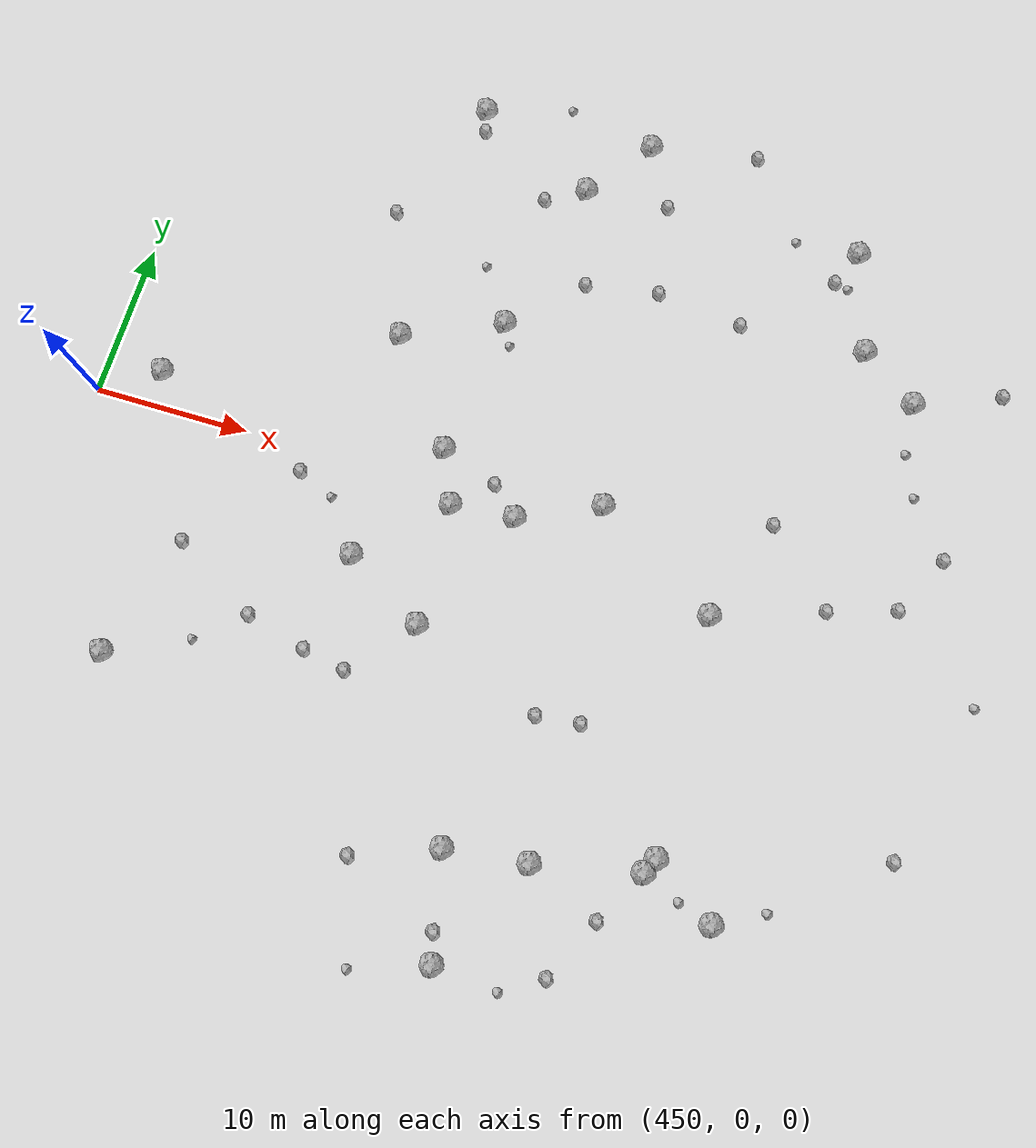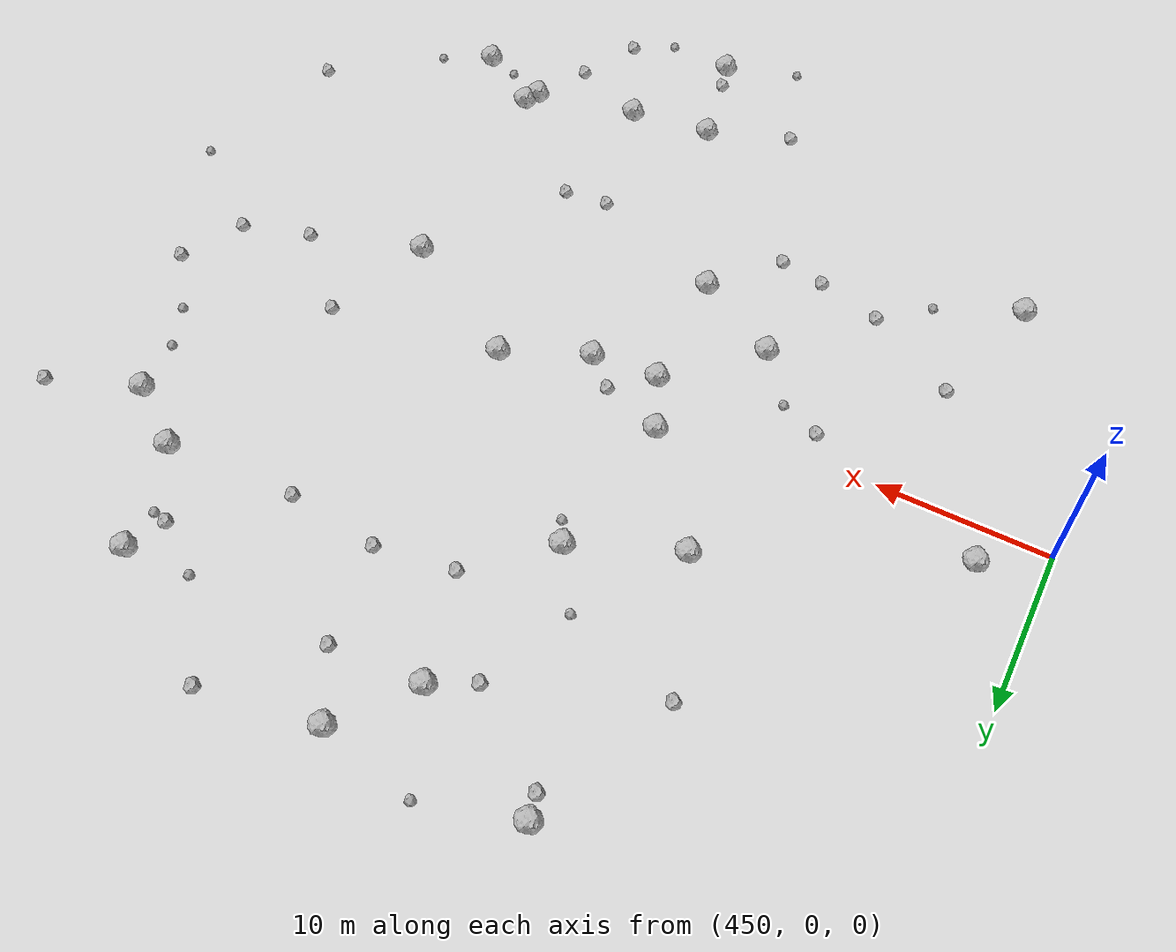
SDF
<sdf version="1.6">
 <world name="default">
  <include><uri>model://sun</uri></include>
  <model name="rock1_12_4">
   <include><uri>model://rock1</uri><pose>491.3603019652943 -19.018613558987614 0.5 0 0 0</pose></include>
  </model>
  <model name="rock1_12_5">
   <include><uri>model://rock1</uri><pose>473.92801913442594 -0.965677880040527 0.5 0 0 0</pose></include>
  </model>
  <model name="rock1_12_6">
   <include><uri>model://rock1</uri><pose>483.0938128530927 1.6379898546844842 0.5 0 0 0</pose></include>
  </model>
  <model name="rock1_12_7">
   <include><uri>model://rock1</uri><pose>453.61603233897984 2.3005758463847883 0.5 0 0 0</pose></include>
  </model>
  <model name="rock1_12_8">
   <include><uri>model://rock1</uri><pose>456.4290099223687 -15.714453626525657 0.5 0 0 0</pose></include>
  </model>
  <model name="rock1_12_9">
   <include><uri>model://rock1</uri><pose>484.8449652943893 -20.380487733310087 0.5 0 0 0</pose></include>
  </model>
  <model name="rock1_12_10">
   <include><uri>model://rock1</uri><pose>469.0307820416973 -5.746113042967533 0.5 0 0 0</pose></include>
  </model>
  <model name="rock1_12_11">
   <include><uri>model://rock1</uri><pose>479.6958218194609 -20.99353997773518 0.5 0 0 0</pose></include>
  </model>
  <model name="rock1_12_12">
   <include><uri>model://rock1</uri><pose>478.0076501734825 -0.647709144815618 0.5 0 0 0</pose></include>
  </model>
  <model name="rock1_12_13">
   <include><uri>model://rock1</uri><pose>494.45804304291056 22.737986614717293 0.5 0 0 0</pose></include>
  </model>
  <model name="rock1_12_14">
   <include><uri>model://rock1</uri><pose>476.11288763268595 22.163318918185354 0.5 0 0 0</pose></include>
  </model>
  <model name="rock1_12_15">
   <include><uri>model://rock1</uri><pose>500.1200739579505 13.58624848989625 0.5 0 0 0</pose></include>
  </model>
  <model name="rock1_12_16">
   <include><uri>model://rock1</uri><pose>496.3957177185439 16.21020452067809 0.5 0 0 0</pose></include>
  </model>
  <model name="rock1_12_17">
   <include><uri>model://rock1</uri><pose>491.1875278848666 -3.231648592818189 0.5 0 0 0</pose></include>
  </model>
  <model name="rock1_12_18">
   <include><uri>model://rock1</uri><pose>474.2404812728668 -8.775669698155571 0.5 0 0 0</pose></include>
  </model>
  <model name="rock1_12_19">
   <include><uri>model://rock1</uri><pose>472.4592229818466 2.390322852031595 0.5 0 0 0</pose></include>
  </model>
  <model name="rock1_12_20">
   <include><uri>model://rock1</uri><pose>468.0384471321636 25.965447487818444 0.5 0 0 0</pose></include>
  </model>
  <model name="rock1_12_21">
   <include><uri>model://rock1</uri><pose>481.0954796005569 -27.35021974357281 0.5 0 0 0</pose></include>
  </model>
  <model name="rock1_12_22">
   <include><uri>model://rock1</uri><pose>479.4159993819049 26.427168003836854 0.5 0 0 0</pose></include>
  </model>
  <model name="rock1_12_23">
   <include><uri>model://rock1</uri><pose>491.8620778691669 -18.052513357727424 0.5 0 0 0</pose></include>
  </model>
  <model name="rock1_12_24">
   <include><uri>model://rock1</uri><pose>467.4339599719245 8.931329747876468 0.5 0 0 0</pose></include>
  </model>
  <model name="rock1_12_25">
   <include><uri>model://rock1</uri><pose>495.88087891443763 -20.727598652792633 0.5 0 0 0</pose></include>
  </model>
  <model name="rock1_12_26">
   <include><uri>model://rock1</uri><pose>473.6623649020114 11.610976478677074 0.5 0 0 0</pose></include>
  </model>
  <model name="rock2_12_0">
   <include><uri>model://rock2</uri><pose>464.1403420392271 -11.087813805191061 0.3 0 0 0</pose></include>
  </model>
  <model name="rock2_12_1">
   <include><uri>model://rock2</uri><pose>470.8206812995454 -12.671407119553734 0.3 0 0 0</pose></include>
  </model>
  <model name="rock2_12_2">
   <include><uri>model://rock2</uri><pose>493.4293320760728 20.3947157804293 0.3 0 0 0</pose></include>
  </model>
  <model name="rock2_12_3">
   <include><uri>model://rock2</uri><pose>502.1698988016886 0.32080504868336845 0.3 0 0 0</pose></include>
  </model>
  <model name="rock2_12_4">
   <include><uri>model://rock2</uri><pose>505.21059291006264 -14.35164638198055 0.3 0 0 0</pose></include>
  </model>
  <model name="rock2_12_5">
   <include><uri>model://rock2</uri><pose>464.48750889805063 17.14176330299731 0.3 0 0 0</pose></include>
  </model>
  <model name="rock2_12_6">
   <include><uri>model://rock2</uri><pose>473.61235864586615 20.77215963211151 0.3 0 0 0</pose></include>
  </model>
  <model name="rock2_12_7">
   <include><uri>model://rock2</uri><pose>468.36952632983946 24.51983165864862 0.3 0 0 0</pose></include>
  </model>
  <model name="rock2_12_8">
   <include><uri>model://rock2</uri><pose>468.05520156942566 -12.143732515773465 0.3 0 0 0</pose></include>
  </model>
  <model name="rock2_12_9">
   <include><uri>model://rock2</uri><pose>493.5514679291648 3.4258300246770617 0.3 0 0 0</pose></include>
  </model>
  <model name="rock2_12_10">
   <include><uri>model://rock2</uri><pose>488.2570087746884 15.752553860935407 0.3 0 0 0</pose></include>
  </model>
  <model name="rock2_12_11">
   <include><uri>model://rock2</uri><pose>481.57710647649424 22.528780575008724 0.3 0 0 0</pose></include>
  </model>
  <model name="rock2_12_12">
   <include><uri>model://rock2</uri><pose>477.88994460170494 15.676165565575403 0.3 0 0 0</pose></include>
  </model>
  <model name="rock2_12_13">
   <include><uri>model://rock2</uri><pose>485.44212795868424 -11.743700053110587 0.3 0 0 0</pose></include>
  </model>
  <model name="rock2_12_14">
   <include><uri>model://rock2</uri><pose>464.2021842503548 -1.5298545189373627 0.3 0 0 0</pose></include>
  </model>
  <model name="rock2_12_15">
   <include><uri>model://rock2</uri><pose>476.1653477107677 1.0693467767556193 0.3 0 0 0</pose></include>
  </model>
  <model name="rock2_12_16">
   <include><uri>model://rock2</uri><pose>482.69627470352845 -12.037325812752396 0.3 0 0 0</pose></include>
  </model>
  <model name="rock2_12_17">
   <include><uri>model://rock2</uri><pose>482.63076705070927 16.428519206868593 0.3 0 0 0</pose></include>
  </model>
  <model name="rock2_12_18">
   <include><uri>model://rock2</uri><pose>474.4995066475237 -22.93982955702591 0.3 0 0 0</pose></include>
  </model>
  <model name="rock2_12_19">
   <include><uri>model://rock2</uri><pose>487.5838029168003 -26.22931720760969 0.3 0 0 0</pose></include>
  </model>
  <model name="rock2_12_20">
   <include><uri>model://rock2</uri><pose>458.6456920405738 -7.853154892895084 0.3 0 0 0</pose></include>
  </model>
  <model name="rock2_12_21">
   <include><uri>model://rock2</uri><pose>486.41762366664295 27.674006340246038 0.3 0 0 0</pose></include>
  </model>
  <model name="rock2_12_22">
   <include><uri>model://rock2</uri><pose>497.95847649919534 -0.9701906968181291 0.3 0 0 0</pose></include>
  </model>
  <model name="rock2_12_23">
   <include><uri>model://rock2</uri><pose>480.5938730050582 -25.60079285319081 0.3 0 0 0</pose></include>
  </model>
  <model name="rock2_12_24">
   <include><uri>model://rock2</uri><pose>504.16311832488617 4.1578729386828925 0.3 0 0 0</pose></include>
  </model>
  <model name="rock2_12_25">
   <include><uri>model://rock2</uri><pose>505.5217792069388 15.718032084858194 0.3 0 0 0</pose></include>
  </model>
  <model name="rock2_12_26">
   <include><uri>model://rock2</uri><pose>489.47568222108606 -22.400170282668224 0.3 0 0 0</pose></include>
  </model>
  <model name="rock3_12_0">
   <include><uri>model://rock3</uri><pose>474.3542424575651 10.177286650631189 0.2 0 0 0</pose></include>
  </model>
  <model name="rock3_12_1">
   <include><uri>model://rock3</uri><pose>507.8681364446359 -4.263707383143952 0.2 0 0 0</pose></include>
  </model>
  <model name="rock3_12_2">
   <include><uri>model://rock3</uri><pose>501.54198334674896 7.54808589998661 0.2 0 0 0</pose></include>
  </model>
  <model name="rock3_12_3">
   <include><uri>model://rock3</uri><pose>500.41664496381094 10.195360210857267 0.2 0 0 0</pose></include>
  </model>
  <model name="rock3_12_4">
   <include><uri>model://rock3</uri><pose>494.34291530561376 20.141856723846622 0.2 0 0 0</pose></include>
  </model>
  <model name="rock3_12_5">
   <include><uri>model://rock3</uri><pose>493.7341447931778 -20.093298587893784 0.2 0 0 0</pose></include>
  </model>
  <model name="rock3_12_6">
   <include><uri>model://rock3</uri><pose>476.4321957952379 -28.990517797476073 0.2 0 0 0</pose></include>
  </model>
  <model name="rock3_12_7">
   <include><uri>model://rock3</uri><pose>471.31351292284717 15.082575547998083 0.2 0 0 0</pose></include>
  </model>
  <model name="rock3_12_8">
   <include><uri>model://rock3</uri><pose>485.11015025990315 -27.771981711299645 0.2 0 0 0</pose></include>
  </model>
  <model name="rock3_12_9">
   <include><uri>model://rock3</uri><pose>490.3367478308113 22.455274813501596 0.2 0 0 0</pose></include>
  </model>
  <model name="rock3_12_10">
   <include><uri>model://rock3</uri><pose>473.56475966651954 27.635022850633 0.2 0 0 0</pose></include>
  </model>
  <model name="rock3_12_11">
   <include><uri>model://rock3</uri><pose>466.5931922853265 -2.6114313127693514 0.2 0 0 0</pose></include>
  </model>
  <model name="rock3_12_12">
   <include><uri>model://rock3</uri><pose>498.83186313934243 -19.255962430501878 0.2 0 0 0</pose></include>
  </model>
  <model name="rock3_12_13">
   <include><uri>model://rock3</uri><pose>461.3394492829476 -13.507680004727106 0.2 0 0 0</pose></include>
  </model>
 </world>
</sdf>
